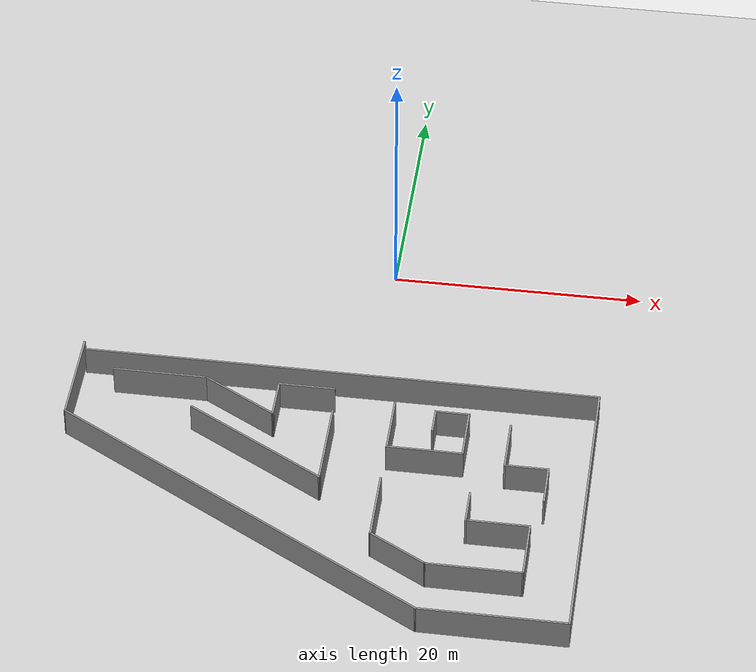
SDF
<?xml version='1.0'?>
<sdf version='1.6'>
<world name="my_map">
    <!-- A global light source -->
    <include>
      <uri>model://sun</uri>
    </include>
    <!-- A ground plane -->
    <include>
      <uri>model://ground_plane</uri>
    </include>
  <model name='tri_world'>
    <pose frame=''>-2.62422 -25.8753 0 0 -0 0</pose>
    <link name='Wall_48'>
      <collision name='Wall_48_Collision'>
        <geometry>
          <box>
            <size>8 0.15 2.5</size>
          </box>
        </geometry>
        <pose frame=''>0 0 1.25 0 -0 0</pose>
      </collision>
      <visual name='Wall_48_Visual'>
        <pose frame=''>0 0 1.25 0 -0 0</pose>
        <geometry>
          <box>
            <size>8 0.15 2.5</size>
          </box>
        </geometry>
        <material>
          <script>
            <uri>file://media/materials/scripts/gazebo.material</uri>
            <name>Gazebo/Grey</name>
          </script>
          <ambient>1 1 1 1</ambient>
        </material>
        <meta>
          <layer>0</layer>
        </meta>
      </visual>
      <pose frame=''>-20.427 8.53873 0 0 -0 -1.5708</pose>
    </link>
    <link name='Wall_49'>
      <collision name='Wall_49_Collision'>
        <geometry>
          <box>
            <size>34.25 0.15 2.5</size>
          </box>
        </geometry>
        <pose frame=''>0 0 1.25 0 -0 0</pose>
      </collision>
      <visual name='Wall_49_Visual'>
        <pose frame=''>0 0 1.25 0 -0 0</pose>
        <geometry>
          <box>
            <size>34.25 0.15 2.5</size>
          </box>
        </geometry>
        <material>
          <script>
            <uri>file://media/materials/scripts/gazebo.material</uri>
            <name>Gazebo/Grey</name>
          </script>
          <ambient>1 1 1 1</ambient>
        </material>
        <meta>
          <layer>0</layer>
        </meta>
      </visual>
      <pose frame=''>-5.66127 -3.91127 0 0 -0 -0.523599</pose>
    </link>
    <link name='Wall_50'>
      <collision name='Wall_50_Collision'>
        <geometry>
          <box>
            <size>11.5 0.15 2.5</size>
          </box>
        </geometry>
        <pose frame=''>0 0 1.25 0 -0 0</pose>
      </collision>
      <visual name='Wall_50_Visual'>
        <pose frame=''>0 0 1.25 0 -0 0</pose>
        <geometry>
          <box>
            <size>11.5 0.15 2.5</size>
          </box>
        </geometry>
        <material>
          <script>
            <uri>file://media/materials/scripts/gazebo.material</uri>
            <name>Gazebo/Grey</name>
          </script>
          <ambient>1 1 1 1</ambient>
        </material>
        <meta>
          <layer>0</layer>
        </meta>
      </visual>
      <pose frame=''>14.7795 -12.4363 0 0 -0 0</pose>
    </link>
    <link name='Wall_51'>
      <collision name='Wall_51_Collision'>
        <geometry>
          <box>
            <size>24.25 0.15 2.5</size>
          </box>
        </geometry>
        <pose frame=''>0 0 1.25 0 -0 0</pose>
      </collision>
      <visual name='Wall_51_Visual'>
        <pose frame=''>0 0 1.25 0 -0 0</pose>
        <geometry>
          <box>
            <size>24.25 0.15 2.5</size>
          </box>
        </geometry>
        <material>
          <script>
            <uri>file://media/materials/scripts/gazebo.material</uri>
            <name>Gazebo/Grey</name>
          </script>
          <ambient>1 1 1 1</ambient>
        </material>
        <meta>
          <layer>0</layer>
        </meta>
      </visual>
      <pose frame=''>20.4545 -0.386273 0 0 -0 1.5708</pose>
    </link>
    <link name='Wall_52'>
      <collision name='Wall_52_Collision'>
        <geometry>
          <box>
            <size>40.75 0.15 2.5</size>
          </box>
        </geometry>
        <pose frame=''>0 0 1.25 0 -0 0</pose>
      </collision>
      <visual name='Wall_52_Visual'>
        <pose frame=''>0 0 1.25 0 -0 0</pose>
        <geometry>
          <box>
            <size>40.75 0.15 2.5</size>
          </box>
        </geometry>
        <material>
          <script>
            <uri>file://media/materials/scripts/gazebo.material</uri>
            <name>Gazebo/Grey</name>
          </script>
          <ambient>1 1 1 1</ambient>
        </material>
        <meta>
          <layer>0</layer>
        </meta>
      </visual>
      <pose frame=''>0.154458 11.6637 0 0 -0 3.14159</pose>
    </link>
    <link name='Wall_54'>
      <collision name='Wall_54_Collision'>
        <geometry>
          <box>
            <size>7.5 0.15 2.5</size>
          </box>
        </geometry>
        <pose frame=''>0 0 1.25 0 -0 0</pose>
      </collision>
      <visual name='Wall_54_Visual'>
        <pose frame=''>0 0 1.25 0 -0 0</pose>
        <geometry>
          <box>
            <size>7.5 0.15 2.5</size>
          </box>
        </geometry>
        <material>
          <script>
            <uri>file://media/materials/scripts/gazebo.material</uri>
            <name>Gazebo/Grey</name>
          </script>
          <ambient>1 1 1 1</ambient>
        </material>
        <meta>
          <layer>0</layer>
        </meta>
      </visual>
      <pose frame=''>-13.8431 9.74997 0 0 -0 0</pose>
    </link>
    <link name='Wall_55'>
      <collision name='Wall_55_Collision'>
        <geometry>
          <box>
            <size>6.75 0.15 2.5</size>
          </box>
        </geometry>
        <pose frame=''>0 0 1.25 0 -0 0</pose>
      </collision>
      <visual name='Wall_55_Visual'>
        <pose frame=''>0 0 1.25 0 -0 0</pose>
        <geometry>
          <box>
            <size>6.75 0.15 2.5</size>
          </box>
        </geometry>
        <material>
          <script>
            <uri>file://media/materials/scripts/gazebo.material</uri>
            <name>Gazebo/Grey</name>
          </script>
          <ambient>1 1 1 1</ambient>
        </material>
        <meta>
          <layer>0</layer>
        </meta>
      </visual>
      <pose frame=''>-7.31021 8.09997 0 0 -0 -0.523599</pose>
    </link>
    <link name='Wall_56'>
      <collision name='Wall_56_Collision'>
        <geometry>
          <box>
            <size>3.5 0.15 2.5</size>
          </box>
        </geometry>
        <pose frame=''>0 0 1.25 0 -0 0</pose>
      </collision>
      <visual name='Wall_56_Visual'>
        <pose frame=''>0 0 1.25 0 -0 0</pose>
        <geometry>
          <box>
            <size>3.5 0.15 2.5</size>
          </box>
        </geometry>
        <material>
          <script>
            <uri>file://media/materials/scripts/gazebo.material</uri>
            <name>Gazebo/Grey</name>
          </script>
          <ambient>1 1 1 1</ambient>
        </material>
        <meta>
          <layer>0</layer>
        </meta>
      </visual>
      <pose frame=''>-4.45232 8.12497 0 0 -0 1.5708</pose>
    </link>
    <link name='Wall_57'>
      <collision name='Wall_57_Collision'>
        <geometry>
          <box>
            <size>4.5 0.15 2.5</size>
          </box>
        </geometry>
        <pose frame=''>0 0 1.25 0 -0 0</pose>
      </collision>
      <visual name='Wall_57_Visual'>
        <pose frame=''>0 0 1.25 0 -0 0</pose>
        <geometry>
          <box>
            <size>4.5 0.15 2.5</size>
          </box>
        </geometry>
        <material>
          <script>
            <uri>file://media/materials/scripts/gazebo.material</uri>
            <name>Gazebo/Grey</name>
          </script>
          <ambient>1 1 1 1</ambient>
        </material>
        <meta>
          <layer>0</layer>
        </meta>
      </visual>
      <pose frame=''>-2.27732 9.79997 0 0 -0 0</pose>
    </link>
    <link name='Wall_59'>
      <collision name='Wall_59_Collision'>
        <geometry>
          <box>
            <size>7.5 0.15 2.5</size>
          </box>
        </geometry>
        <pose frame=''>0 0 1.25 0 -0 0</pose>
      </collision>
      <visual name='Wall_59_Visual'>
        <pose frame=''>0 0 1.25 0 -0 0</pose>
        <geometry>
          <box>
            <size>7.5 0.15 2.5</size>
          </box>
        </geometry>
        <material>
          <script>
            <uri>file://media/materials/scripts/gazebo.material</uri>
            <name>Gazebo/Grey</name>
          </script>
          <ambient>1 1 1 1</ambient>
        </material>
        <meta>
          <layer>0</layer>
        </meta>
      </visual>
      <pose frame=''>0.124257 3.7421 0 0 -0 -1.5708</pose>
    </link>
    <link name='Wall_60'>
      <collision name='Wall_60_Collision'>
        <geometry>
          <box>
            <size>12.75 0.15 2.5</size>
          </box>
        </geometry>
        <pose frame=''>0 0 1.25 0 -0 0</pose>
      </collision>
      <visual name='Wall_60_Visual'>
        <pose frame=''>0 0 1.25 0 -0 0</pose>
        <geometry>
          <box>
            <size>12.75 0.15 2.5</size>
          </box>
        </geometry>
        <material>
          <script>
            <uri>file://media/materials/scripts/gazebo.material</uri>
            <name>Gazebo/Grey</name>
          </script>
          <ambient>1 1 1 1</ambient>
        </material>
        <meta>
          <layer>0</layer>
        </meta>
      </visual>
      <pose frame=''>-5.3317 3.2171 0 0 -0 2.61799</pose>
    </link>
    <link name='Wall_62'>
      <collision name='Wall_62_Collision'>
        <geometry>
          <box>
            <size>5 0.15 2.5</size>
          </box>
        </geometry>
        <pose frame=''>0 0 1.25 0 -0 0</pose>
      </collision>
      <visual name='Wall_62_Visual'>
        <pose frame=''>0 0 1.25 0 -0 0</pose>
        <geometry>
          <box>
            <size>5 0.15 2.5</size>
          </box>
        </geometry>
        <material>
          <script>
            <uri>file://media/materials/scripts/gazebo.material</uri>
            <name>Gazebo/Grey</name>
          </script>
          <ambient>1 1 1 1</ambient>
        </material>
        <meta>
          <layer>0</layer>
        </meta>
      </visual>
      <pose frame=''>4.79 6.45014 0 0 -0 -1.5708</pose>
    </link>
    <link name='Wall_63'>
      <collision name='Wall_63_Collision'>
        <geometry>
          <box>
            <size>6 0.15 2.5</size>
          </box>
        </geometry>
        <pose frame=''>0 0 1.25 0 -0 0</pose>
      </collision>
      <visual name='Wall_63_Visual'>
        <pose frame=''>0 0 1.25 0 -0 0</pose>
        <geometry>
          <box>
            <size>6 0.15 2.5</size>
          </box>
        </geometry>
        <material>
          <script>
            <uri>file://media/materials/scripts/gazebo.material</uri>
            <name>Gazebo/Grey</name>
          </script>
          <ambient>1 1 1 1</ambient>
        </material>
        <meta>
          <layer>0</layer>
        </meta>
      </visual>
      <pose frame=''>7.715 4.02514 0 0 -0 0</pose>
    </link>
    <link name='Wall_64'>
      <collision name='Wall_64_Collision'>
        <geometry>
          <box>
            <size>4.5 0.15 2.5</size>
          </box>
        </geometry>
        <pose frame=''>0 0 1.25 0 -0 0</pose>
      </collision>
      <visual name='Wall_64_Visual'>
        <pose frame=''>0 0 1.25 0 -0 0</pose>
        <geometry>
          <box>
            <size>4.5 0.15 2.5</size>
          </box>
        </geometry>
        <material>
          <script>
            <uri>file://media/materials/scripts/gazebo.material</uri>
            <name>Gazebo/Grey</name>
          </script>
          <ambient>1 1 1 1</ambient>
        </material>
        <meta>
          <layer>0</layer>
        </meta>
      </visual>
      <pose frame=''>10.64 6.20014 0 0 -0 1.5708</pose>
    </link>
    <link name='Wall_65'>
      <collision name='Wall_65_Collision'>
        <geometry>
          <box>
            <size>2.75 0.15 2.5</size>
          </box>
        </geometry>
        <pose frame=''>0 0 1.25 0 -0 0</pose>
      </collision>
      <visual name='Wall_65_Visual'>
        <pose frame=''>0 0 1.25 0 -0 0</pose>
        <geometry>
          <box>
            <size>2.75 0.15 2.5</size>
          </box>
        </geometry>
        <material>
          <script>
            <uri>file://media/materials/scripts/gazebo.material</uri>
            <name>Gazebo/Grey</name>
          </script>
          <ambient>1 1 1 1</ambient>
        </material>
        <meta>
          <layer>0</layer>
        </meta>
      </visual>
      <pose frame=''>9.34 8.37514 0 0 -0 3.14159</pose>
    </link>
    <link name='Wall_66'>
      <collision name='Wall_66_Collision'>
        <geometry>
          <box>
            <size>2.25 0.15 2.5</size>
          </box>
        </geometry>
        <pose frame=''>0 0 1.25 0 -0 0</pose>
      </collision>
      <visual name='Wall_66_Visual'>
        <pose frame=''>0 0 1.25 0 -0 0</pose>
        <geometry>
          <box>
            <size>2.25 0.15 2.5</size>
          </box>
        </geometry>
        <material>
          <script>
            <uri>file://media/materials/scripts/gazebo.material</uri>
            <name>Gazebo/Grey</name>
          </script>
          <ambient>1 1 1 1</ambient>
        </material>
        <meta>
          <layer>0</layer>
        </meta>
      </visual>
      <pose frame=''>8.04 7.32514 0 0 -0 -1.5708</pose>
    </link>
    <link name='Wall_68'>
      <collision name='Wall_68_Collision'>
        <geometry>
          <box>
            <size>6 0.15 2.5</size>
          </box>
        </geometry>
        <pose frame=''>0 0 1.25 0 -0 0</pose>
      </collision>
      <visual name='Wall_68_Visual'>
        <pose frame=''>0 0 1.25 0 -0 0</pose>
        <geometry>
          <box>
            <size>6 0.15 2.5</size>
          </box>
        </geometry>
        <material>
          <script>
            <uri>file://media/materials/scripts/gazebo.material</uri>
            <name>Gazebo/Grey</name>
          </script>
          <ambient>1 1 1 1</ambient>
        </material>
        <meta>
          <layer>0</layer>
        </meta>
      </visual>
      <pose frame=''>4.79 -2.36072 0 0 -0 -1.5708</pose>
    </link>
    <link name='Wall_69'>
      <collision name='Wall_69_Collision'>
        <geometry>
          <box>
            <size>5.25 0.15 2.5</size>
          </box>
        </geometry>
        <pose frame=''>0 0 1.25 0 -0 0</pose>
      </collision>
      <visual name='Wall_69_Visual'>
        <pose frame=''>0 0 1.25 0 -0 0</pose>
        <geometry>
          <box>
            <size>5.25 0.15 2.5</size>
          </box>
        </geometry>
        <material>
          <script>
            <uri>file://media/materials/scripts/gazebo.material</uri>
            <name>Gazebo/Grey</name>
          </script>
          <ambient>1 1 1 1</ambient>
        </material>
        <meta>
          <layer>0</layer>
        </meta>
      </visual>
      <pose frame=''>6.99837 -6.56072 0 0 -0 -0.523599</pose>
    </link>
    <link name='Wall_70'>
      <collision name='Wall_70_Collision'>
        <geometry>
          <box>
            <size>7.5 0.15 2.5</size>
          </box>
        </geometry>
        <pose frame=''>0 0 1.25 0 -0 0</pose>
      </collision>
      <visual name='Wall_70_Visual'>
        <pose frame=''>0 0 1.25 0 -0 0</pose>
        <geometry>
          <box>
            <size>7.5 0.15 2.5</size>
          </box>
        </geometry>
        <material>
          <script>
            <uri>file://media/materials/scripts/gazebo.material</uri>
            <name>Gazebo/Grey</name>
          </script>
          <ambient>1 1 1 1</ambient>
        </material>
        <meta>
          <layer>0</layer>
        </meta>
      </visual>
      <pose frame=''>12.8817 -7.83572 0 0 -0 0</pose>
    </link>
    <link name='Wall_71'>
      <collision name='Wall_71_Collision'>
        <geometry>
          <box>
            <size>5 0.15 2.5</size>
          </box>
        </geometry>
        <pose frame=''>0 0 1.25 0 -0 0</pose>
      </collision>
      <visual name='Wall_71_Visual'>
        <pose frame=''>0 0 1.25 0 -0 0</pose>
        <geometry>
          <box>
            <size>5 0.15 2.5</size>
          </box>
        </geometry>
        <material>
          <script>
            <uri>file://media/materials/scripts/gazebo.material</uri>
            <name>Gazebo/Grey</name>
          </script>
          <ambient>1 1 1 1</ambient>
        </material>
        <meta>
          <layer>0</layer>
        </meta>
      </visual>
      <pose frame=''>16.5567 -5.41072 0 0 -0 1.5708</pose>
    </link>
    <link name='Wall_72'>
      <collision name='Wall_72_Collision'>
        <geometry>
          <box>
            <size>5 0.15 2.5</size>
          </box>
        </geometry>
        <pose frame=''>0 0 1.25 0 -0 0</pose>
      </collision>
      <visual name='Wall_72_Visual'>
        <pose frame=''>0 0 1.25 0 -0 0</pose>
        <geometry>
          <box>
            <size>5 0.15 2.5</size>
          </box>
        </geometry>
        <material>
          <script>
            <uri>file://media/materials/scripts/gazebo.material</uri>
            <name>Gazebo/Grey</name>
          </script>
          <ambient>1 1 1 1</ambient>
        </material>
        <meta>
          <layer>0</layer>
        </meta>
      </visual>
      <pose frame=''>14.1317 -2.98572 0 0 -0 3.14159</pose>
    </link>
    <link name='Wall_73'>
      <collision name='Wall_73_Collision'>
        <geometry>
          <box>
            <size>3 0.15 2.5</size>
          </box>
        </geometry>
        <pose frame=''>0 0 1.25 0 -0 0</pose>
      </collision>
      <visual name='Wall_73_Visual'>
        <pose frame=''>0 0 1.25 0 -0 0</pose>
        <geometry>
          <box>
            <size>3 0.15 2.5</size>
          </box>
        </geometry>
        <material>
          <script>
            <uri>file://media/materials/scripts/gazebo.material</uri>
            <name>Gazebo/Grey</name>
          </script>
          <ambient>1 1 1 1</ambient>
        </material>
        <meta>
          <layer>0</layer>
        </meta>
      </visual>
      <pose frame=''>11.7067 -1.56072 0 0 -0 1.5708</pose>
    </link>
    <link name='Wall_75'>
      <collision name='Wall_75_Collision'>
        <geometry>
          <box>
            <size>4.5 0.15 2.5</size>
          </box>
        </geometry>
        <pose frame=''>0 0 1.25 0 -0 0</pose>
      </collision>
      <visual name='Wall_75_Visual'>
        <pose frame=''>0 0 1.25 0 -0 0</pose>
        <geometry>
          <box>
            <size>4.5 0.15 2.5</size>
          </box>
        </geometry>
        <material>
          <script>
            <uri>file://media/materials/scripts/gazebo.material</uri>
            <name>Gazebo/Grey</name>
          </script>
          <ambient>1 1 1 1</ambient>
        </material>
        <meta>
          <layer>0</layer>
        </meta>
      </visual>
      <pose frame=''>13.9757 5.3879 0 0 -0 -1.5708</pose>
    </link>
    <link name='Wall_76'>
      <collision name='Wall_76_Collision'>
        <geometry>
          <box>
            <size>3.5 0.15 2.5</size>
          </box>
        </geometry>
        <pose frame=''>0 0 1.25 0 -0 0</pose>
      </collision>
      <visual name='Wall_76_Visual'>
        <pose frame=''>0 0 1.25 0 -0 0</pose>
        <geometry>
          <box>
            <size>3.5 0.15 2.5</size>
          </box>
        </geometry>
        <material>
          <script>
            <uri>file://media/materials/scripts/gazebo.material</uri>
            <name>Gazebo/Grey</name>
          </script>
          <ambient>1 1 1 1</ambient>
        </material>
        <meta>
          <layer>0</layer>
        </meta>
      </visual>
      <pose frame=''>15.6507 3.2129 0 0 -0 0</pose>
    </link>
    <link name='Wall_77'>
      <collision name='Wall_77_Collision'>
        <geometry>
          <box>
            <size>3.5 0.15 2.5</size>
          </box>
        </geometry>
        <pose frame=''>0 0 1.25 0 -0 0</pose>
      </collision>
      <visual name='Wall_77_Visual'>
        <pose frame=''>0 0 1.25 0 -0 0</pose>
        <geometry>
          <box>
            <size>3.5 0.15 2.5</size>
          </box>
        </geometry>
        <material>
          <script>
            <uri>file://media/materials/scripts/gazebo.material</uri>
            <name>Gazebo/Grey</name>
          </script>
          <ambient>1 1 1 1</ambient>
        </material>
        <meta>
          <layer>0</layer>
        </meta>
      </visual>
      <pose frame=''>17.3257 1.5379 0 0 -0 -1.5708</pose>
    </link>
    <static>1</static>
  </model>
</world>
</sdf>
